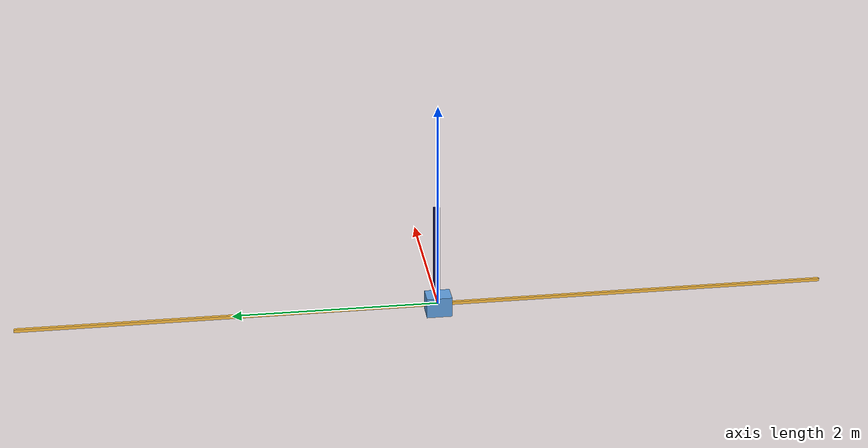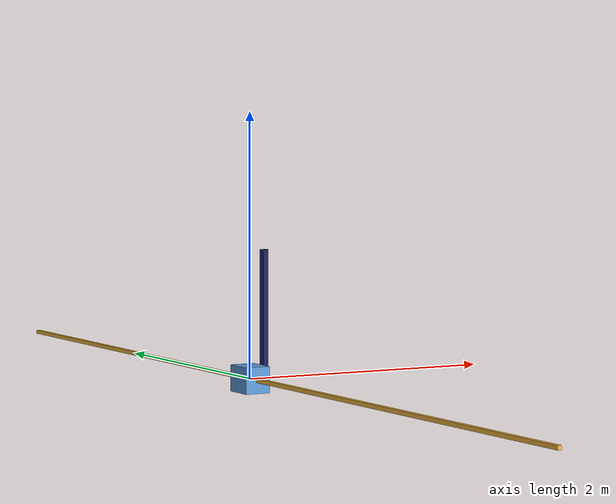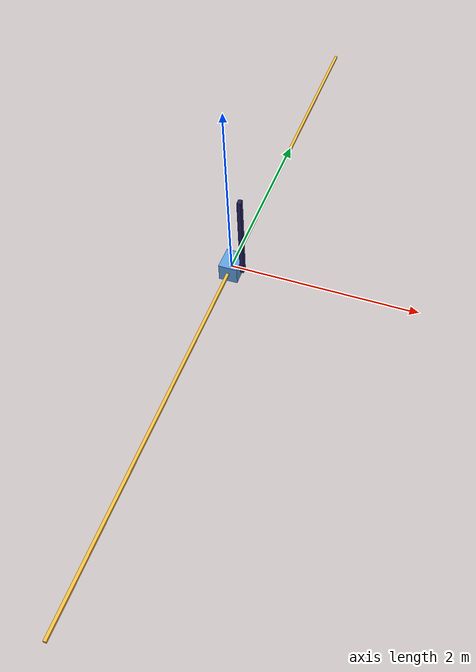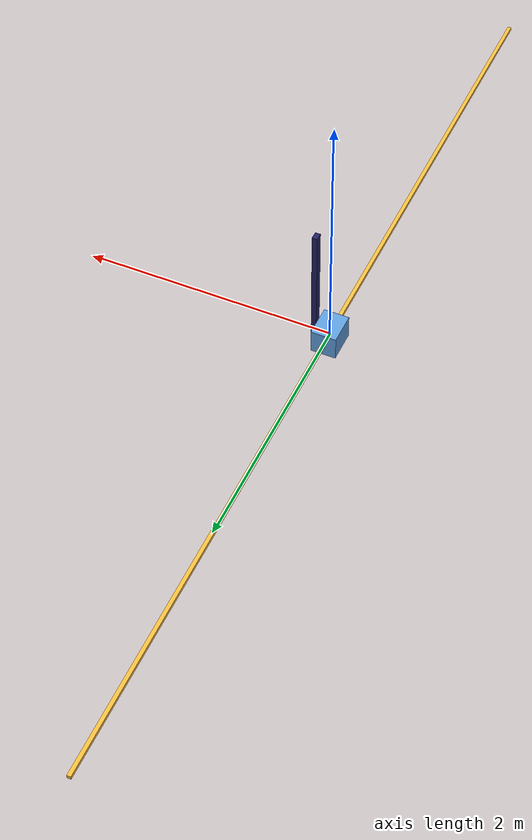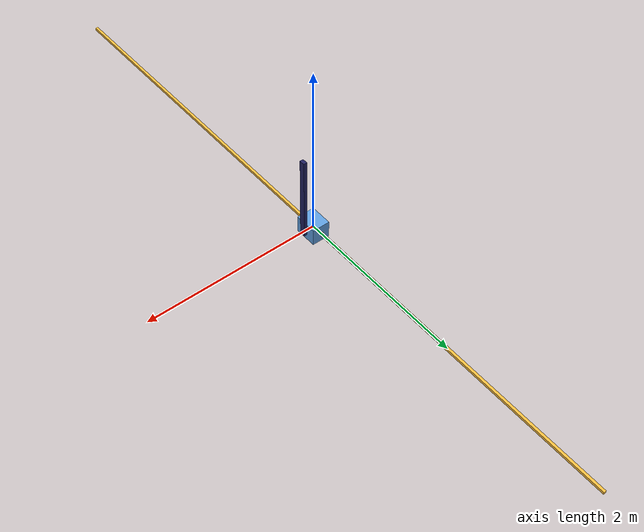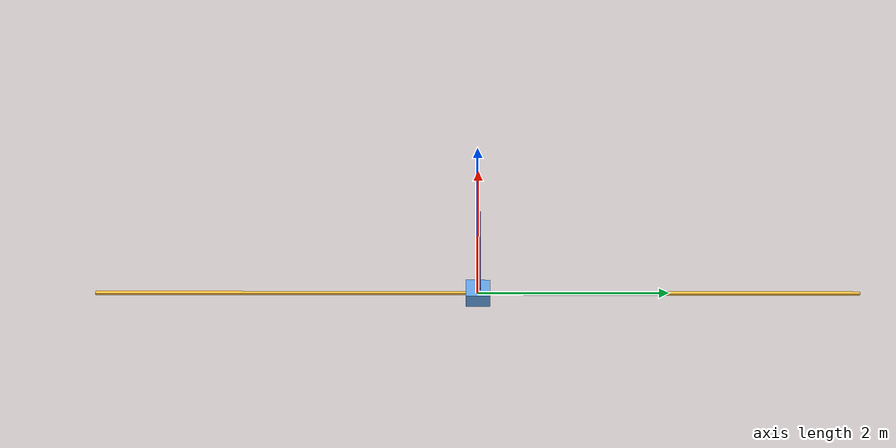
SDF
<?xml version="1.0"?>
<sdf version='1.11'>
  <model name='cartpole'>
    <link name='slider'>
      <inertial>
        <pose>0 0 0 0 0 0</pose>
        <mass>1</mass>
        <inertia>
          <ixx>0.0085400000000000007</ixx>
          <ixy>0</ixy>
          <ixz>0</ixz>
          <iyy>0.0066699999999999997</iyy>
          <iyz>0</iyz>
          <izz>0.0085400000000000007</izz>
        </inertia>
      </inertial>
      <collision name='slider_collision'>
        <pose>0 0 0 0 0 0</pose>
        <geometry>
          <box>
            <size>0.029999999999999999 8 0.029999999999999999</size>
          </box>
        </geometry>
      </collision>
      <visual name='slider_visual'>
        <pose>0 0 0 0 0 0</pose>
        <geometry>
          <box>
            <size>0.029999999999999999 8 0.029999999999999999</size>
          </box>
        </geometry>
        <material>
          <diffuse>1 0.75000006 0.25 1</diffuse>
          <ambient>1 0.75000006 0.25 1</ambient>
        </material>
      </visual>
    </link>
    <joint name='slider_to_cart' type='prismatic'>
      <pose relative_to='slider'> 0 0 0 0 0 0</pose>
      <parent>slider</parent>
      <child>cart</child>
      <axis>
        <xyz>0 1 0</xyz>
        <limit>
          <lower>-4</lower>
          <upper>4</upper>
          <effort>1000</effort>
          <velocity>100</velocity>
        </limit>
        <dynamics>
          <spring_reference>0</spring_reference>
          <spring_stiffness>0</spring_stiffness>
        </dynamics>
      </axis>
    </joint>
    <link name='cart'>
      <pose relative_to='slider_to_cart'>0 0 0 0 0 0</pose>
      <inertial>
        <pose>0 0 0 0 0 0</pose>
        <mass>1</mass>
        <inertia>
          <ixx>0.0085400000000000007</ixx>
          <ixy>0</ixy>
          <ixz>0</ixz>
          <iyy>0.0066699999999999997</iyy>
          <iyz>0</iyz>
          <izz>0.0085400000000000007</izz>
        </inertia>
      </inertial>
      <collision name='cart_collision'>
        <pose>0 0 0 0 0 0</pose>
        <geometry>
          <box>
            <size>0.20000000000000001 0.25 0.20000000000000001</size>
          </box>
        </geometry>
      </collision>
      <visual name='cart_visual'>
        <pose>0 0 0 0 0 0</pose>
        <geometry>
          <box>
            <size>0.20000000000000001 0.25 0.20000000000000001</size>
          </box>
        </geometry>
        <material>
          <diffuse>0.37500003 0.625 0.875 1</diffuse>
          <ambient>0.37500003 0.625 0.875 1</ambient>
        </material>
      </visual>
    </link>
    <joint name='cart_to_pole' type='revolute'>
      <pose relative_to='cart'>0.12 0 0 0 0 0</pose>
      <parent>cart</parent>
      <child>pole</child>
      <axis>
        <xyz>1 0 0</xyz>
        <limit>
          <effort>1000</effort>
          <velocity>8</velocity>
          <lower>-inf</lower>
          <upper>inf</upper>
        </limit>
        <dynamics>
          <spring_reference>0</spring_reference>
          <spring_stiffness>0</spring_stiffness>
        </dynamics>
      </axis>
    </joint>
    <link name='pole'>
      <pose relative_to='cart_to_pole'>0 0 0 0 0 0</pose>
      <inertial>
        <pose>0 0 0.46999999999999997 0 0 0</pose>
        <mass>1</mass>
        <inertia>
          <ixx>0.083629999999999996</ixx>
          <ixy>0</ixy>
          <ixz>0</ixz>
          <iyy>0.083470000000000003</iyy>
          <iyz>0</iyz>
          <izz>0.00043300000000000001</izz>
        </inertia>
      </inertial>
      <collision name='pole_collision'>
        <pose>0 0 0.46999999999999997 0 0 0</pose>
        <geometry>
          <box>
            <size>0.040000000000000001 0.059999999999999998 1</size>
          </box>
        </geometry>
      </collision>
      <visual name='pole_visual'>
        <pose>0 0 0.46999999999999997 0 0 0</pose>
        <geometry>
          <box>
            <size>0.040000000000000001 0.059999999999999998 1</size>
          </box>
        </geometry>
        <material>
          <diffuse>0.125 0.125 0.37500003 1</diffuse>
          <ambient>0.125 0.125 0.37500003 1</ambient>
        </material>
      </visual>
    </link>
    <!-- Plugins -->
    <plugin
       filename="gz-sim-joint-controller-system"
       name="gz::sim::systems::JointController">
       <joint_name>slider_to_cart</joint_name>
       <p_gain>3.0</p_gain>
    </plugin>
    <plugin
       filename="gz-sim-joint-state-publisher-system"
       name="gz::sim::systems::JointStatePublisher">
       <joint_name>slider_to_cart</joint_name>
       <joint_name>cart_to_pole</joint_name>
    </plugin>
  </model>
</sdf>
